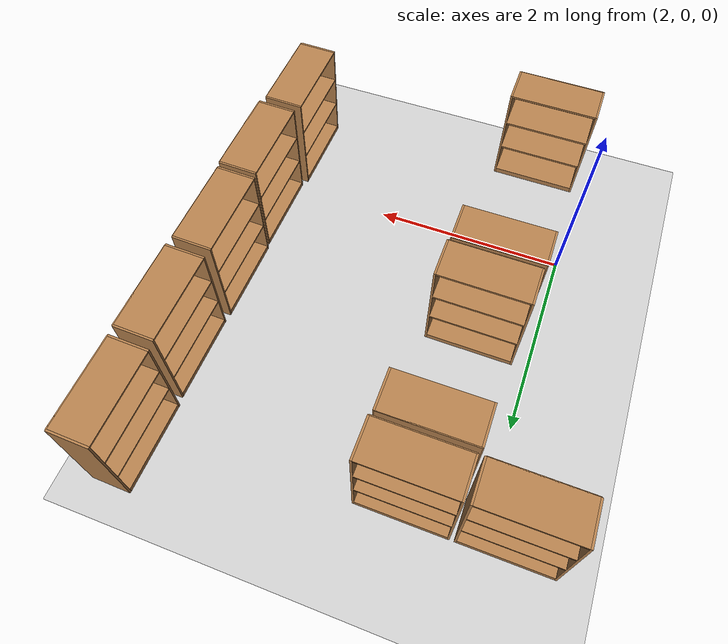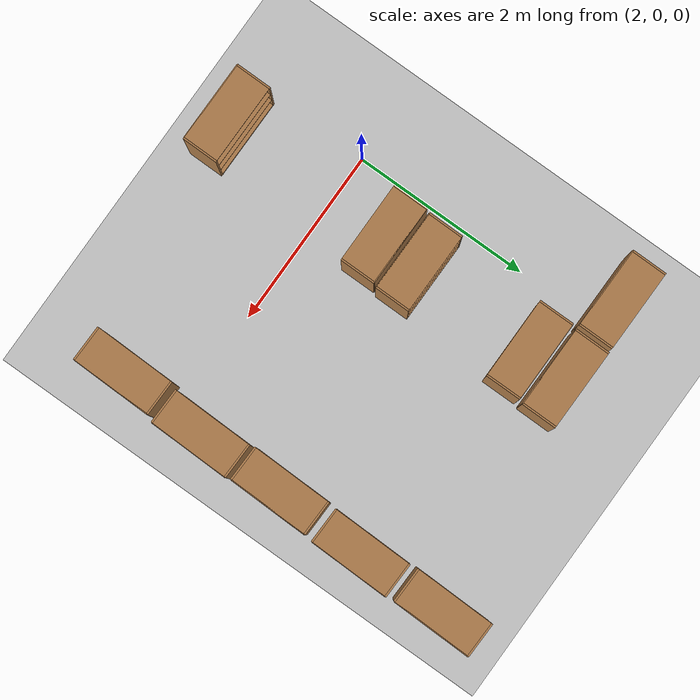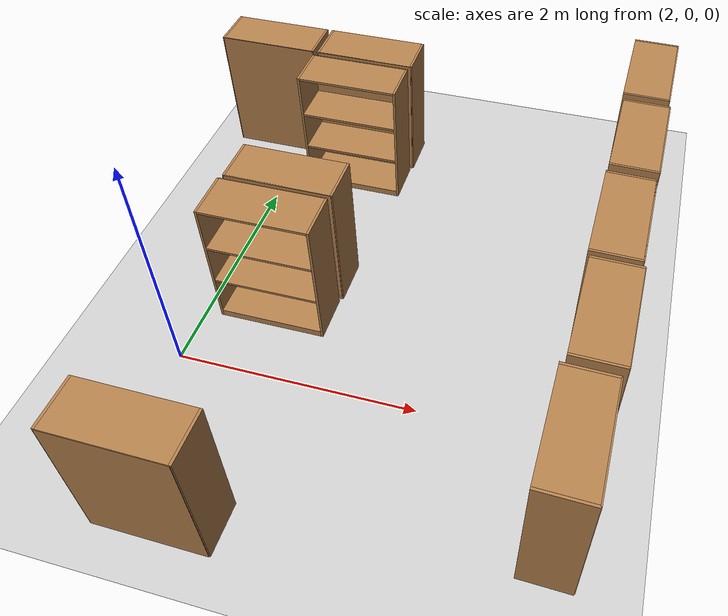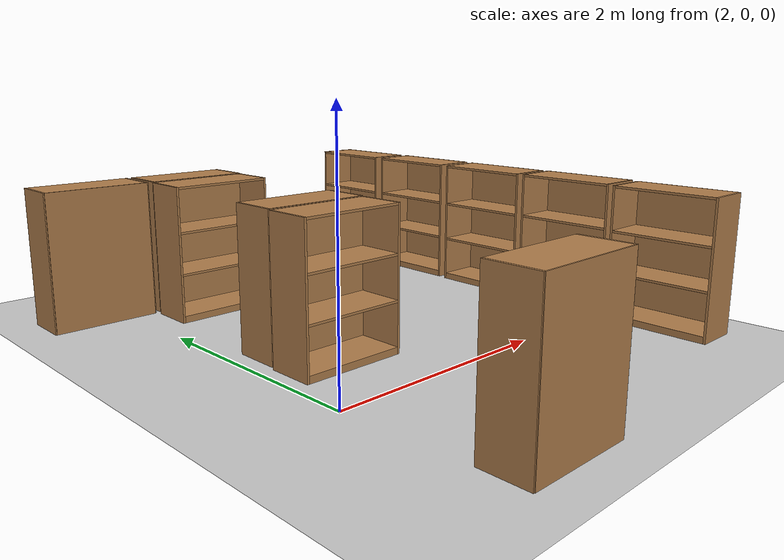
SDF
<sdf version="1.7">
 <world name="default">
  <model name="ground_plane">
   <static>1</static>
   <link name="link">
    <collision name="collision">
     <geometry><plane><normal>0 0 1</normal><size>100 100</size></plane></geometry>
     <surface>
      <contact><collide_bitmask>65535</collide_bitmask></contact>
      <friction><ode><mu>100</mu><mu2>50</mu2></ode></friction>
     </surface>
    </collision>
    <visual name="visual">
     <cast_shadows>0</cast_shadows>
     <geometry><plane><normal>0 0 1</normal><size>100 100</size></plane></geometry>
     <material>
      <script><uri>file://media/materials/scripts/gazebo.material</uri><name>Gazebo/Grey</name></script>
     </material>
    </visual>
   </link>
  </model>
  <model name="bookshelf">
   <static>1</static>
   <link name="link">
    <inertial><mass>1</mass></inertial>
    <collision name="back">
     <pose>0 0.005 0.6 0 -0 0</pose>
     <geometry><box><size>0.9 0.01 1.2</size></box></geometry>
    </collision>
    <visual name="visual1">
     <pose>0 0.005 0.6 0 -0 0</pose>
     <geometry><box><size>0.9 0.01 1.2</size></box></geometry>
     <material>
      <script><uri>file://media/materials/scripts/gazebo.material</uri><name>Gazebo/Wood</name></script>
     </material>
    </visual>
    <collision name="left_side">
     <pose>0.45 -0.195 0.6 0 -0 0</pose>
     <geometry><box><size>0.02 0.4 1.2</size></box></geometry>
    </collision>
    <visual name="visual2">
     <pose>0.45 -0.195 0.6 0 -0 0</pose>
     <geometry><box><size>0.02 0.4 1.2</size></box></geometry>
     <material>
      <script><uri>file://media/materials/scripts/gazebo.material</uri><name>Gazebo/Wood</name></script>
     </material>
    </visual>
    <collision name="right_side">
     <pose>-0.45 -0.195 0.6 0 -0 0</pose>
     <geometry><box><size>0.02 0.4 1.2</size></box></geometry>
    </collision>
    <visual name="visual3">
     <pose>-0.45 -0.195 0.6 0 -0 0</pose>
     <geometry><box><size>0.02 0.4 1.2</size></box></geometry>
     <material>
      <script><uri>file://media/materials/scripts/gazebo.material</uri><name>Gazebo/Wood</name></script>
     </material>
    </visual>
    <collision name="bottom">
     <pose>0 -0.195 0.03 0 -0 0</pose>
     <geometry><box><size>0.88 0.4 0.06</size></box></geometry>
    </collision>
    <visual name="visual4">
     <pose>0 -0.195 0.03 0 -0 0</pose>
     <geometry><box><size>0.88 0.4 0.06</size></box></geometry>
     <material>
      <script><uri>file://media/materials/scripts/gazebo.material</uri><name>Gazebo/Wood</name></script>
     </material>
    </visual>
    <collision name="top">
     <pose>0 -0.195 1.19 0 -0 0</pose>
     <geometry><box><size>0.88 0.4 0.02</size></box></geometry>
    </collision>
    <visual name="visual5">
     <pose>0 -0.195 1.19 0 -0 0</pose>
     <geometry><box><size>0.88 0.4 0.02</size></box></geometry>
     <material>
      <script><uri>file://media/materials/scripts/gazebo.material</uri><name>Gazebo/Wood</name></script>
     </material>
    </visual>
    <collision name="low_shelf">
     <pose>0 -0.195 0.43 0 -0 0</pose>
     <geometry><box><size>0.88 0.4 0.02</size></box></geometry>
    </collision>
    <visual name="visual6">
     <pose>0 -0.195 0.43 0 -0 0</pose>
     <geometry><box><size>0.88 0.4 0.02</size></box></geometry>
     <material>
      <script><uri>file://media/materials/scripts/gazebo.material</uri><name>Gazebo/Wood</name></script>
     </material>
    </visual>
    <collision name="high_shelf">
     <pose>0 -0.195 0.8 0 -0 0</pose>
     <geometry><box><size>0.88 0.4 0.02</size></box></geometry>
    </collision>
    <visual name="visual7">
     <pose>0 -0.195 0.8 0 -0 0</pose>
     <geometry><box><size>0.88 0.4 0.02</size></box></geometry>
     <material>
      <script><uri>file://media/materials/scripts/gazebo.material</uri><name>Gazebo/Wood</name></script>
     </material>
    </visual>
   </link>
   <pose>2.68648 2.72445 0 0 -0 0</pose>
  </model>
  <model name="bookshelf_2">
   <static>1</static>
   <link name="link">
    <inertial><mass>1</mass></inertial>
    <collision name="back">
     <pose>0 0.005 0.6 0 -0 0</pose>
     <geometry><box><size>0.9 0.01 1.2</size></box></geometry>
    </collision>
    <visual name="visual1">
     <pose>0 0.005 0.6 0 -0 0</pose>
     <geometry><box><size>0.9 0.01 1.2</size></box></geometry>
     <material>
      <script><uri>file://media/materials/scripts/gazebo.material</uri><name>Gazebo/Wood</name></script>
     </material>
    </visual>
    <collision name="left_side">
     <pose>0.45 -0.195 0.6 0 -0 0</pose>
     <geometry><box><size>0.02 0.4 1.2</size></box></geometry>
    </collision>
    <visual name="visual2">
     <pose>0.45 -0.195 0.6 0 -0 0</pose>
     <geometry><box><size>0.02 0.4 1.2</size></box></geometry>
     <material>
      <script><uri>file://media/materials/scripts/gazebo.material</uri><name>Gazebo/Wood</name></script>
     </material>
    </visual>
    <collision name="right_side">
     <pose>-0.45 -0.195 0.6 0 -0 0</pose>
     <geometry><box><size>0.02 0.4 1.2</size></box></geometry>
    </collision>
    <visual name="visual3">
     <pose>-0.45 -0.195 0.6 0 -0 0</pose>
     <geometry><box><size>0.02 0.4 1.2</size></box></geometry>
     <material>
      <script><uri>file://media/materials/scripts/gazebo.material</uri><name>Gazebo/Wood</name></script>
     </material>
    </visual>
    <collision name="bottom">
     <pose>0 -0.195 0.03 0 -0 0</pose>
     <geometry><box><size>0.88 0.4 0.06</size></box></geometry>
    </collision>
    <visual name="visual4">
     <pose>0 -0.195 0.03 0 -0 0</pose>
     <geometry><box><size>0.88 0.4 0.06</size></box></geometry>
     <material>
      <script><uri>file://media/materials/scripts/gazebo.material</uri><name>Gazebo/Wood</name></script>
     </material>
    </visual>
    <collision name="top">
     <pose>0 -0.195 1.19 0 -0 0</pose>
     <geometry><box><size>0.88 0.4 0.02</size></box></geometry>
    </collision>
    <visual name="visual5">
     <pose>0 -0.195 1.19 0 -0 0</pose>
     <geometry><box><size>0.88 0.4 0.02</size></box></geometry>
     <material>
      <script><uri>file://media/materials/scripts/gazebo.material</uri><name>Gazebo/Wood</name></script>
     </material>
    </visual>
    <collision name="low_shelf">
     <pose>0 -0.195 0.43 0 -0 0</pose>
     <geometry><box><size>0.88 0.4 0.02</size></box></geometry>
    </collision>
    <visual name="visual6">
     <pose>0 -0.195 0.43 0 -0 0</pose>
     <geometry><box><size>0.88 0.4 0.02</size></box></geometry>
     <material>
      <script><uri>file://media/materials/scripts/gazebo.material</uri><name>Gazebo/Wood</name></script>
     </material>
    </visual>
    <collision name="high_shelf">
     <pose>0 -0.195 0.8 0 -0 0</pose>
     <geometry><box><size>0.88 0.4 0.02</size></box></geometry>
    </collision>
    <visual name="visual7">
     <pose>0 -0.195 0.8 0 -0 0</pose>
     <geometry><box><size>0.88 0.4 0.02</size></box></geometry>
     <material>
      <script><uri>file://media/materials/scripts/gazebo.material</uri><name>Gazebo/Wood</name></script>
     </material>
    </visual>
   </link>
   <pose>2.61434 0.940511 0 0 -0 3.13622</pose>
  </model>
  <model name="bookshelf_clone">
   <static>1</static>
   <link name="link">
    <inertial><mass>1</mass></inertial>
    <collision name="back">
     <pose>0 0.005 0.6 0 -0 0</pose>
     <geometry><box><size>0.9 0.01 1.2</size></box></geometry>
    </collision>
    <visual name="visual1">
     <pose>0 0.005 0.6 0 -0 0</pose>
     <geometry><box><size>0.9 0.01 1.2</size></box></geometry>
     <material>
      <script><uri>file://media/materials/scripts/gazebo.material</uri><name>Gazebo/Wood</name></script>
     </material>
    </visual>
    <collision name="left_side">
     <pose>0.45 -0.195 0.6 0 -0 0</pose>
     <geometry><box><size>0.02 0.4 1.2</size></box></geometry>
    </collision>
    <visual name="visual2">
     <pose>0.45 -0.195 0.6 0 -0 0</pose>
     <geometry><box><size>0.02 0.4 1.2</size></box></geometry>
     <material>
      <script><uri>file://media/materials/scripts/gazebo.material</uri><name>Gazebo/Wood</name></script>
     </material>
    </visual>
    <collision name="right_side">
     <pose>-0.45 -0.195 0.6 0 -0 0</pose>
     <geometry><box><size>0.02 0.4 1.2</size></box></geometry>
    </collision>
    <visual name="visual3">
     <pose>-0.45 -0.195 0.6 0 -0 0</pose>
     <geometry><box><size>0.02 0.4 1.2</size></box></geometry>
     <material>
      <script><uri>file://media/materials/scripts/gazebo.material</uri><name>Gazebo/Wood</name></script>
     </material>
    </visual>
    <collision name="bottom">
     <pose>0 -0.195 0.03 0 -0 0</pose>
     <geometry><box><size>0.88 0.4 0.06</size></box></geometry>
    </collision>
    <visual name="visual4">
     <pose>0 -0.195 0.03 0 -0 0</pose>
     <geometry><box><size>0.88 0.4 0.06</size></box></geometry>
     <material>
      <script><uri>file://media/materials/scripts/gazebo.material</uri><name>Gazebo/Wood</name></script>
     </material>
    </visual>
    <collision name="top">
     <pose>0 -0.195 1.19 0 -0 0</pose>
     <geometry><box><size>0.88 0.4 0.02</size></box></geometry>
    </collision>
    <visual name="visual5">
     <pose>0 -0.195 1.19 0 -0 0</pose>
     <geometry><box><size>0.88 0.4 0.02</size></box></geometry>
     <material>
      <script><uri>file://media/materials/scripts/gazebo.material</uri><name>Gazebo/Wood</name></script>
     </material>
    </visual>
    <collision name="low_shelf">
     <pose>0 -0.195 0.43 0 -0 0</pose>
     <geometry><box><size>0.88 0.4 0.02</size></box></geometry>
    </collision>
    <visual name="visual6">
     <pose>0 -0.195 0.43 0 -0 0</pose>
     <geometry><box><size>0.88 0.4 0.02</size></box></geometry>
     <material>
      <script><uri>file://media/materials/scripts/gazebo.material</uri><name>Gazebo/Wood</name></script>
     </material>
    </visual>
    <collision name="high_shelf">
     <pose>0 -0.195 0.8 0 -0 0</pose>
     <geometry><box><size>0.88 0.4 0.02</size></box></geometry>
    </collision>
    <visual name="visual7">
     <pose>0 -0.195 0.8 0 -0 0</pose>
     <geometry><box><size>0.88 0.4 0.02</size></box></geometry>
     <material>
      <script><uri>file://media/materials/scripts/gazebo.material</uri><name>Gazebo/Wood</name></script>
     </material>
    </visual>
   </link>
   <pose>2.59058 0.88967 0 0 -0 0</pose>
  </model>
  <model name="bookshelf_2_clone_0_clone">
   <static>1</static>
   <link name="link">
    <inertial><mass>1</mass></inertial>
    <collision name="back">
     <pose>0 0.005 0.6 0 -0 0</pose>
     <geometry><box><size>0.9 0.01 1.2</size></box></geometry>
    </collision>
    <visual name="visual1">
     <pose>0 0.005 0.6 0 -0 0</pose>
     <geometry><box><size>0.9 0.01 1.2</size></box></geometry>
     <material>
      <script><uri>file://media/materials/scripts/gazebo.material</uri><name>Gazebo/Wood</name></script>
     </material>
    </visual>
    <collision name="left_side">
     <pose>0.45 -0.195 0.6 0 -0 0</pose>
     <geometry><box><size>0.02 0.4 1.2</size></box></geometry>
    </collision>
    <visual name="visual2">
     <pose>0.45 -0.195 0.6 0 -0 0</pose>
     <geometry><box><size>0.02 0.4 1.2</size></box></geometry>
     <material>
      <script><uri>file://media/materials/scripts/gazebo.material</uri><name>Gazebo/Wood</name></script>
     </material>
    </visual>
    <collision name="right_side">
     <pose>-0.45 -0.195 0.6 0 -0 0</pose>
     <geometry><box><size>0.02 0.4 1.2</size></box></geometry>
    </collision>
    <visual name="visual3">
     <pose>-0.45 -0.195 0.6 0 -0 0</pose>
     <geometry><box><size>0.02 0.4 1.2</size></box></geometry>
     <material>
      <script><uri>file://media/materials/scripts/gazebo.material</uri><name>Gazebo/Wood</name></script>
     </material>
    </visual>
    <collision name="bottom">
     <pose>0 -0.195 0.03 0 -0 0</pose>
     <geometry><box><size>0.88 0.4 0.06</size></box></geometry>
    </collision>
    <visual name="visual4">
     <pose>0 -0.195 0.03 0 -0 0</pose>
     <geometry><box><size>0.88 0.4 0.06</size></box></geometry>
     <material>
      <script><uri>file://media/materials/scripts/gazebo.material</uri><name>Gazebo/Wood</name></script>
     </material>
    </visual>
    <collision name="top">
     <pose>0 -0.195 1.19 0 -0 0</pose>
     <geometry><box><size>0.88 0.4 0.02</size></box></geometry>
    </collision>
    <visual name="visual5">
     <pose>0 -0.195 1.19 0 -0 0</pose>
     <geometry><box><size>0.88 0.4 0.02</size></box></geometry>
     <material>
      <script><uri>file://media/materials/scripts/gazebo.material</uri><name>Gazebo/Wood</name></script>
     </material>
    </visual>
    <collision name="low_shelf">
     <pose>0 -0.195 0.43 0 -0 0</pose>
     <geometry><box><size>0.88 0.4 0.02</size></box></geometry>
    </collision>
    <visual name="visual6">
     <pose>0 -0.195 0.43 0 -0 0</pose>
     <geometry><box><size>0.88 0.4 0.02</size></box></geometry>
     <material>
      <script><uri>file://media/materials/scripts/gazebo.material</uri><name>Gazebo/Wood</name></script>
     </material>
    </visual>
    <collision name="high_shelf">
     <pose>0 -0.195 0.8 0 -0 0</pose>
     <geometry><box><size>0.88 0.4 0.02</size></box></geometry>
    </collision>
    <visual name="visual7">
     <pose>0 -0.195 0.8 0 -0 0</pose>
     <geometry><box><size>0.88 0.4 0.02</size></box></geometry>
     <material>
      <script><uri>file://media/materials/scripts/gazebo.material</uri><name>Gazebo/Wood</name></script>
     </material>
    </visual>
   </link>
   <pose>2.71065 2.78539 0 0 -0 3.13622</pose>
  </model>
  <model name="bookshelf_2_clone_0_clone_0">
   <static>1</static>
   <link name="link">
    <inertial><mass>1</mass></inertial>
    <collision name="back">
     <pose>0 0.005 0.6 0 -0 0</pose>
     <geometry><box><size>0.9 0.01 1.2</size></box></geometry>
    </collision>
    <visual name="visual1">
     <pose>0 0.005 0.6 0 -0 0</pose>
     <geometry><box><size>0.9 0.01 1.2</size></box></geometry>
     <material>
      <script><uri>file://media/materials/scripts/gazebo.material</uri><name>Gazebo/Wood</name></script>
     </material>
    </visual>
    <collision name="left_side">
     <pose>0.45 -0.195 0.6 0 -0 0</pose>
     <geometry><box><size>0.02 0.4 1.2</size></box></geometry>
    </collision>
    <visual name="visual2">
     <pose>0.45 -0.195 0.6 0 -0 0</pose>
     <geometry><box><size>0.02 0.4 1.2</size></box></geometry>
     <material>
      <script><uri>file://media/materials/scripts/gazebo.material</uri><name>Gazebo/Wood</name></script>
     </material>
    </visual>
    <collision name="right_side">
     <pose>-0.45 -0.195 0.6 0 -0 0</pose>
     <geometry><box><size>0.02 0.4 1.2</size></box></geometry>
    </collision>
    <visual name="visual3">
     <pose>-0.45 -0.195 0.6 0 -0 0</pose>
     <geometry><box><size>0.02 0.4 1.2</size></box></geometry>
     <material>
      <script><uri>file://media/materials/scripts/gazebo.material</uri><name>Gazebo/Wood</name></script>
     </material>
    </visual>
    <collision name="bottom">
     <pose>0 -0.195 0.03 0 -0 0</pose>
     <geometry><box><size>0.88 0.4 0.06</size></box></geometry>
    </collision>
    <visual name="visual4">
     <pose>0 -0.195 0.03 0 -0 0</pose>
     <geometry><box><size>0.88 0.4 0.06</size></box></geometry>
     <material>
      <script><uri>file://media/materials/scripts/gazebo.material</uri><name>Gazebo/Wood</name></script>
     </material>
    </visual>
    <collision name="top">
     <pose>0 -0.195 1.19 0 -0 0</pose>
     <geometry><box><size>0.88 0.4 0.02</size></box></geometry>
    </collision>
    <visual name="visual5">
     <pose>0 -0.195 1.19 0 -0 0</pose>
     <geometry><box><size>0.88 0.4 0.02</size></box></geometry>
     <material>
      <script><uri>file://media/materials/scripts/gazebo.material</uri><name>Gazebo/Wood</name></script>
     </material>
    </visual>
    <collision name="low_shelf">
     <pose>0 -0.195 0.43 0 -0 0</pose>
     <geometry><box><size>0.88 0.4 0.02</size></box></geometry>
    </collision>
    <visual name="visual6">
     <pose>0 -0.195 0.43 0 -0 0</pose>
     <geometry><box><size>0.88 0.4 0.02</size></box></geometry>
     <material>
      <script><uri>file://media/materials/scripts/gazebo.material</uri><name>Gazebo/Wood</name></script>
     </material>
    </visual>
    <collision name="high_shelf">
     <pose>0 -0.195 0.8 0 -0 0</pose>
     <geometry><box><size>0.88 0.4 0.02</size></box></geometry>
    </collision>
    <visual name="visual7">
     <pose>0 -0.195 0.8 0 -0 0</pose>
     <geometry><box><size>0.88 0.4 0.02</size></box></geometry>
     <material>
      <script><uri>file://media/materials/scripts/gazebo.material</uri><name>Gazebo/Wood</name></script>
     </material>
    </visual>
   </link>
   <pose>1.74885 2.78963 0 0 -0 3.13622</pose>
  </model>
  <model name="bookshelf_2_clone_1">
   <static>1</static>
   <link name="link">
    <inertial><mass>1</mass></inertial>
    <collision name="back">
     <pose>0 0.005 0.6 0 -0 0</pose>
     <geometry><box><size>0.9 0.01 1.2</size></box></geometry>
    </collision>
    <visual name="visual1">
     <pose>0 0.005 0.6 0 -0 0</pose>
     <geometry><box><size>0.9 0.01 1.2</size></box></geometry>
     <material>
      <script><uri>file://media/materials/scripts/gazebo.material</uri><name>Gazebo/Wood</name></script>
     </material>
    </visual>
    <collision name="left_side">
     <pose>0.45 -0.195 0.6 0 -0 0</pose>
     <geometry><box><size>0.02 0.4 1.2</size></box></geometry>
    </collision>
    <visual name="visual2">
     <pose>0.45 -0.195 0.6 0 -0 0</pose>
     <geometry><box><size>0.02 0.4 1.2</size></box></geometry>
     <material>
      <script><uri>file://media/materials/scripts/gazebo.material</uri><name>Gazebo/Wood</name></script>
     </material>
    </visual>
    <collision name="right_side">
     <pose>-0.45 -0.195 0.6 0 -0 0</pose>
     <geometry><box><size>0.02 0.4 1.2</size></box></geometry>
    </collision>
    <visual name="visual3">
     <pose>-0.45 -0.195 0.6 0 -0 0</pose>
     <geometry><box><size>0.02 0.4 1.2</size></box></geometry>
     <material>
      <script><uri>file://media/materials/scripts/gazebo.material</uri><name>Gazebo/Wood</name></script>
     </material>
    </visual>
    <collision name="bottom">
     <pose>0 -0.195 0.03 0 -0 0</pose>
     <geometry><box><size>0.88 0.4 0.06</size></box></geometry>
    </collision>
    <visual name="visual4">
     <pose>0 -0.195 0.03 0 -0 0</pose>
     <geometry><box><size>0.88 0.4 0.06</size></box></geometry>
     <material>
      <script><uri>file://media/materials/scripts/gazebo.material</uri><name>Gazebo/Wood</name></script>
     </material>
    </visual>
    <collision name="top">
     <pose>0 -0.195 1.19 0 -0 0</pose>
     <geometry><box><size>0.88 0.4 0.02</size></box></geometry>
    </collision>
    <visual name="visual5">
     <pose>0 -0.195 1.19 0 -0 0</pose>
     <geometry><box><size>0.88 0.4 0.02</size></box></geometry>
     <material>
      <script><uri>file://media/materials/scripts/gazebo.material</uri><name>Gazebo/Wood</name></script>
     </material>
    </visual>
    <collision name="low_shelf">
     <pose>0 -0.195 0.43 0 -0 0</pose>
     <geometry><box><size>0.88 0.4 0.02</size></box></geometry>
    </collision>
    <visual name="visual6">
     <pose>0 -0.195 0.43 0 -0 0</pose>
     <geometry><box><size>0.88 0.4 0.02</size></box></geometry>
     <material>
      <script><uri>file://media/materials/scripts/gazebo.material</uri><name>Gazebo/Wood</name></script>
     </material>
    </visual>
    <collision name="high_shelf">
     <pose>0 -0.195 0.8 0 -0 0</pose>
     <geometry><box><size>0.88 0.4 0.02</size></box></geometry>
    </collision>
    <visual name="visual7">
     <pose>0 -0.195 0.8 0 -0 0</pose>
     <geometry><box><size>0.88 0.4 0.02</size></box></geometry>
     <material>
      <script><uri>file://media/materials/scripts/gazebo.material</uri><name>Gazebo/Wood</name></script>
     </material>
    </visual>
   </link>
   <pose>2.51878 -1.46416 0 0 -0 3.13622</pose>
  </model>
  <model name="bookshelf_3">
   <static>1</static>
   <link name="link">
    <inertial><mass>1</mass></inertial>
    <collision name="back">
     <pose>0 0.005 0.6 0 -0 0</pose>
     <geometry><box><size>0.9 0.01 1.2</size></box></geometry>
    </collision>
    <visual name="visual1">
     <pose>0 0.005 0.6 0 -0 0</pose>
     <geometry><box><size>0.9 0.01 1.2</size></box></geometry>
     <material>
      <script><uri>file://media/materials/scripts/gazebo.material</uri><name>Gazebo/Wood</name></script>
     </material>
    </visual>
    <collision name="left_side">
     <pose>0.45 -0.195 0.6 0 -0 0</pose>
     <geometry><box><size>0.02 0.4 1.2</size></box></geometry>
    </collision>
    <visual name="visual2">
     <pose>0.45 -0.195 0.6 0 -0 0</pose>
     <geometry><box><size>0.02 0.4 1.2</size></box></geometry>
     <material>
      <script><uri>file://media/materials/scripts/gazebo.material</uri><name>Gazebo/Wood</name></script>
     </material>
    </visual>
    <collision name="right_side">
     <pose>-0.45 -0.195 0.6 0 -0 0</pose>
     <geometry><box><size>0.02 0.4 1.2</size></box></geometry>
    </collision>
    <visual name="visual3">
     <pose>-0.45 -0.195 0.6 0 -0 0</pose>
     <geometry><box><size>0.02 0.4 1.2</size></box></geometry>
     <material>
      <script><uri>file://media/materials/scripts/gazebo.material</uri><name>Gazebo/Wood</name></script>
     </material>
    </visual>
    <collision name="bottom">
     <pose>0 -0.195 0.03 0 -0 0</pose>
     <geometry><box><size>0.88 0.4 0.06</size></box></geometry>
    </collision>
    <visual name="visual4">
     <pose>0 -0.195 0.03 0 -0 0</pose>
     <geometry><box><size>0.88 0.4 0.06</size></box></geometry>
     <material>
      <script><uri>file://media/materials/scripts/gazebo.material</uri><name>Gazebo/Wood</name></script>
     </material>
    </visual>
    <collision name="top">
     <pose>0 -0.195 1.19 0 -0 0</pose>
     <geometry><box><size>0.88 0.4 0.02</size></box></geometry>
    </collision>
    <visual name="visual5">
     <pose>0 -0.195 1.19 0 -0 0</pose>
     <geometry><box><size>0.88 0.4 0.02</size></box></geometry>
     <material>
      <script><uri>file://media/materials/scripts/gazebo.material</uri><name>Gazebo/Wood</name></script>
     </material>
    </visual>
    <collision name="low_shelf">
     <pose>0 -0.195 0.43 0 -0 0</pose>
     <geometry><box><size>0.88 0.4 0.02</size></box></geometry>
    </collision>
    <visual name="visual6">
     <pose>0 -0.195 0.43 0 -0 0</pose>
     <geometry><box><size>0.88 0.4 0.02</size></box></geometry>
     <material>
      <script><uri>file://media/materials/scripts/gazebo.material</uri><name>Gazebo/Wood</name></script>
     </material>
    </visual>
    <collision name="high_shelf">
     <pose>0 -0.195 0.8 0 -0 0</pose>
     <geometry><box><size>0.88 0.4 0.02</size></box></geometry>
    </collision>
    <visual name="visual7">
     <pose>0 -0.195 0.8 0 -0 0</pose>
     <geometry><box><size>0.88 0.4 0.02</size></box></geometry>
     <material>
      <script><uri>file://media/materials/scripts/gazebo.material</uri><name>Gazebo/Wood</name></script>
     </material>
    </visual>
   </link>
   <pose>5.48196 3.32826 0 0 0 -1.59113</pose>
  </model>
  <model name="bookshelf_3_clone">
   <static>1</static>
   <link name="link">
    <inertial><mass>1</mass></inertial>
    <collision name="back">
     <pose>0 0.005 0.6 0 -0 0</pose>
     <geometry><box><size>0.9 0.01 1.2</size></box></geometry>
    </collision>
    <visual name="visual1">
     <pose>0 0.005 0.6 0 -0 0</pose>
     <geometry><box><size>0.9 0.01 1.2</size></box></geometry>
     <material>
      <script><uri>file://media/materials/scripts/gazebo.material</uri><name>Gazebo/Wood</name></script>
     </material>
    </visual>
    <collision name="left_side">
     <pose>0.45 -0.195 0.6 0 -0 0</pose>
     <geometry><box><size>0.02 0.4 1.2</size></box></geometry>
    </collision>
    <visual name="visual2">
     <pose>0.45 -0.195 0.6 0 -0 0</pose>
     <geometry><box><size>0.02 0.4 1.2</size></box></geometry>
     <material>
      <script><uri>file://media/materials/scripts/gazebo.material</uri><name>Gazebo/Wood</name></script>
     </material>
    </visual>
    <collision name="right_side">
     <pose>-0.45 -0.195 0.6 0 -0 0</pose>
     <geometry><box><size>0.02 0.4 1.2</size></box></geometry>
    </collision>
    <visual name="visual3">
     <pose>-0.45 -0.195 0.6 0 -0 0</pose>
     <geometry><box><size>0.02 0.4 1.2</size></box></geometry>
     <material>
      <script><uri>file://media/materials/scripts/gazebo.material</uri><name>Gazebo/Wood</name></script>
     </material>
    </visual>
    <collision name="bottom">
     <pose>0 -0.195 0.03 0 -0 0</pose>
     <geometry><box><size>0.88 0.4 0.06</size></box></geometry>
    </collision>
    <visual name="visual4">
     <pose>0 -0.195 0.03 0 -0 0</pose>
     <geometry><box><size>0.88 0.4 0.06</size></box></geometry>
     <material>
      <script><uri>file://media/materials/scripts/gazebo.material</uri><name>Gazebo/Wood</name></script>
     </material>
    </visual>
    <collision name="top">
     <pose>0 -0.195 1.19 0 -0 0</pose>
     <geometry><box><size>0.88 0.4 0.02</size></box></geometry>
    </collision>
    <visual name="visual5">
     <pose>0 -0.195 1.19 0 -0 0</pose>
     <geometry><box><size>0.88 0.4 0.02</size></box></geometry>
     <material>
      <script><uri>file://media/materials/scripts/gazebo.material</uri><name>Gazebo/Wood</name></script>
     </material>
    </visual>
    <collision name="low_shelf">
     <pose>0 -0.195 0.43 0 -0 0</pose>
     <geometry><box><size>0.88 0.4 0.02</size></box></geometry>
    </collision>
    <visual name="visual6">
     <pose>0 -0.195 0.43 0 -0 0</pose>
     <geometry><box><size>0.88 0.4 0.02</size></box></geometry>
     <material>
      <script><uri>file://media/materials/scripts/gazebo.material</uri><name>Gazebo/Wood</name></script>
     </material>
    </visual>
    <collision name="high_shelf">
     <pose>0 -0.195 0.8 0 -0 0</pose>
     <geometry><box><size>0.88 0.4 0.02</size></box></geometry>
    </collision>
    <visual name="visual7">
     <pose>0 -0.195 0.8 0 -0 0</pose>
     <geometry><box><size>0.88 0.4 0.02</size></box></geometry>
     <material>
      <script><uri>file://media/materials/scripts/gazebo.material</uri><name>Gazebo/Wood</name></script>
     </material>
    </visual>
   </link>
   <pose>5.47577 2.33053 0 0 0 -1.59113</pose>
  </model>
  <model name="bookshelf_3_clone_0">
   <static>1</static>
   <link name="link">
    <inertial><mass>1</mass></inertial>
    <collision name="back">
     <pose>0 0.005 0.6 0 -0 0</pose>
     <geometry><box><size>0.9 0.01 1.2</size></box></geometry>
    </collision>
    <visual name="visual1">
     <pose>0 0.005 0.6 0 -0 0</pose>
     <geometry><box><size>0.9 0.01 1.2</size></box></geometry>
     <material>
      <script><uri>file://media/materials/scripts/gazebo.material</uri><name>Gazebo/Wood</name></script>
     </material>
    </visual>
    <collision name="left_side">
     <pose>0.45 -0.195 0.6 0 -0 0</pose>
     <geometry><box><size>0.02 0.4 1.2</size></box></geometry>
    </collision>
    <visual name="visual2">
     <pose>0.45 -0.195 0.6 0 -0 0</pose>
     <geometry><box><size>0.02 0.4 1.2</size></box></geometry>
     <material>
      <script><uri>file://media/materials/scripts/gazebo.material</uri><name>Gazebo/Wood</name></script>
     </material>
    </visual>
    <collision name="right_side">
     <pose>-0.45 -0.195 0.6 0 -0 0</pose>
     <geometry><box><size>0.02 0.4 1.2</size></box></geometry>
    </collision>
    <visual name="visual3">
     <pose>-0.45 -0.195 0.6 0 -0 0</pose>
     <geometry><box><size>0.02 0.4 1.2</size></box></geometry>
     <material>
      <script><uri>file://media/materials/scripts/gazebo.material</uri><name>Gazebo/Wood</name></script>
     </material>
    </visual>
    <collision name="bottom">
     <pose>0 -0.195 0.03 0 -0 0</pose>
     <geometry><box><size>0.88 0.4 0.06</size></box></geometry>
    </collision>
    <visual name="visual4">
     <pose>0 -0.195 0.03 0 -0 0</pose>
     <geometry><box><size>0.88 0.4 0.06</size></box></geometry>
     <material>
      <script><uri>file://media/materials/scripts/gazebo.material</uri><name>Gazebo/Wood</name></script>
     </material>
    </visual>
    <collision name="top">
     <pose>0 -0.195 1.19 0 -0 0</pose>
     <geometry><box><size>0.88 0.4 0.02</size></box></geometry>
    </collision>
    <visual name="visual5">
     <pose>0 -0.195 1.19 0 -0 0</pose>
     <geometry><box><size>0.88 0.4 0.02</size></box></geometry>
     <material>
      <script><uri>file://media/materials/scripts/gazebo.material</uri><name>Gazebo/Wood</name></script>
     </material>
    </visual>
    <collision name="low_shelf">
     <pose>0 -0.195 0.43 0 -0 0</pose>
     <geometry><box><size>0.88 0.4 0.02</size></box></geometry>
    </collision>
    <visual name="visual6">
     <pose>0 -0.195 0.43 0 -0 0</pose>
     <geometry><box><size>0.88 0.4 0.02</size></box></geometry>
     <material>
      <script><uri>file://media/materials/scripts/gazebo.material</uri><name>Gazebo/Wood</name></script>
     </material>
    </visual>
    <collision name="high_shelf">
     <pose>0 -0.195 0.8 0 -0 0</pose>
     <geometry><box><size>0.88 0.4 0.02</size></box></geometry>
    </collision>
    <visual name="visual7">
     <pose>0 -0.195 0.8 0 -0 0</pose>
     <geometry><box><size>0.88 0.4 0.02</size></box></geometry>
     <material>
      <script><uri>file://media/materials/scripts/gazebo.material</uri><name>Gazebo/Wood</name></script>
     </material>
    </visual>
   </link>
   <pose>5.4432 1.32929 0 0 0 -1.59113</pose>
  </model>
  <model name="bookshelf_3_clone_1">
   <static>1</static>
   <link name="link">
    <inertial><mass>1</mass></inertial>
    <collision name="back">
     <pose>0 0.005 0.6 0 -0 0</pose>
     <geometry><box><size>0.9 0.01 1.2</size></box></geometry>
    </collision>
    <visual name="visual1">
     <pose>0 0.005 0.6 0 -0 0</pose>
     <geometry><box><size>0.9 0.01 1.2</size></box></geometry>
     <material>
      <script><uri>file://media/materials/scripts/gazebo.material</uri><name>Gazebo/Wood</name></script>
     </material>
    </visual>
    <collision name="left_side">
     <pose>0.45 -0.195 0.6 0 -0 0</pose>
     <geometry><box><size>0.02 0.4 1.2</size></box></geometry>
    </collision>
    <visual name="visual2">
     <pose>0.45 -0.195 0.6 0 -0 0</pose>
     <geometry><box><size>0.02 0.4 1.2</size></box></geometry>
     <material>
      <script><uri>file://media/materials/scripts/gazebo.material</uri><name>Gazebo/Wood</name></script>
     </material>
    </visual>
    <collision name="right_side">
     <pose>-0.45 -0.195 0.6 0 -0 0</pose>
     <geometry><box><size>0.02 0.4 1.2</size></box></geometry>
    </collision>
    <visual name="visual3">
     <pose>-0.45 -0.195 0.6 0 -0 0</pose>
     <geometry><box><size>0.02 0.4 1.2</size></box></geometry>
     <material>
      <script><uri>file://media/materials/scripts/gazebo.material</uri><name>Gazebo/Wood</name></script>
     </material>
    </visual>
    <collision name="bottom">
     <pose>0 -0.195 0.03 0 -0 0</pose>
     <geometry><box><size>0.88 0.4 0.06</size></box></geometry>
    </collision>
    <visual name="visual4">
     <pose>0 -0.195 0.03 0 -0 0</pose>
     <geometry><box><size>0.88 0.4 0.06</size></box></geometry>
     <material>
      <script><uri>file://media/materials/scripts/gazebo.material</uri><name>Gazebo/Wood</name></script>
     </material>
    </visual>
    <collision name="top">
     <pose>0 -0.195 1.19 0 -0 0</pose>
     <geometry><box><size>0.88 0.4 0.02</size></box></geometry>
    </collision>
    <visual name="visual5">
     <pose>0 -0.195 1.19 0 -0 0</pose>
     <geometry><box><size>0.88 0.4 0.02</size></box></geometry>
     <material>
      <script><uri>file://media/materials/scripts/gazebo.material</uri><name>Gazebo/Wood</name></script>
     </material>
    </visual>
    <collision name="low_shelf">
     <pose>0 -0.195 0.43 0 -0 0</pose>
     <geometry><box><size>0.88 0.4 0.02</size></box></geometry>
    </collision>
    <visual name="visual6">
     <pose>0 -0.195 0.43 0 -0 0</pose>
     <geometry><box><size>0.88 0.4 0.02</size></box></geometry>
     <material>
      <script><uri>file://media/materials/scripts/gazebo.material</uri><name>Gazebo/Wood</name></script>
     </material>
    </visual>
    <collision name="high_shelf">
     <pose>0 -0.195 0.8 0 -0 0</pose>
     <geometry><box><size>0.88 0.4 0.02</size></box></geometry>
    </collision>
    <visual name="visual7">
     <pose>0 -0.195 0.8 0 -0 0</pose>
     <geometry><box><size>0.88 0.4 0.02</size></box></geometry>
     <material>
      <script><uri>file://media/materials/scripts/gazebo.material</uri><name>Gazebo/Wood</name></script>
     </material>
    </visual>
   </link>
   <pose>5.4398 0.365962 0 0 0 -1.59113</pose>
  </model>
  <model name="bookshelf_3_clone_2">
   <static>1</static>
   <link name="link">
    <inertial><mass>1</mass></inertial>
    <collision name="back">
     <pose>0 0.005 0.6 0 -0 0</pose>
     <geometry><box><size>0.9 0.01 1.2</size></box></geometry>
    </collision>
    <visual name="visual1">
     <pose>0 0.005 0.6 0 -0 0</pose>
     <geometry><box><size>0.9 0.01 1.2</size></box></geometry>
     <material>
      <script><uri>file://media/materials/scripts/gazebo.material</uri><name>Gazebo/Wood</name></script>
     </material>
    </visual>
    <collision name="left_side">
     <pose>0.45 -0.195 0.6 0 -0 0</pose>
     <geometry><box><size>0.02 0.4 1.2</size></box></geometry>
    </collision>
    <visual name="visual2">
     <pose>0.45 -0.195 0.6 0 -0 0</pose>
     <geometry><box><size>0.02 0.4 1.2</size></box></geometry>
     <material>
      <script><uri>file://media/materials/scripts/gazebo.material</uri><name>Gazebo/Wood</name></script>
     </material>
    </visual>
    <collision name="right_side">
     <pose>-0.45 -0.195 0.6 0 -0 0</pose>
     <geometry><box><size>0.02 0.4 1.2</size></box></geometry>
    </collision>
    <visual name="visual3">
     <pose>-0.45 -0.195 0.6 0 -0 0</pose>
     <geometry><box><size>0.02 0.4 1.2</size></box></geometry>
     <material>
      <script><uri>file://media/materials/scripts/gazebo.material</uri><name>Gazebo/Wood</name></script>
     </material>
    </visual>
    <collision name="bottom">
     <pose>0 -0.195 0.03 0 -0 0</pose>
     <geometry><box><size>0.88 0.4 0.06</size></box></geometry>
    </collision>
    <visual name="visual4">
     <pose>0 -0.195 0.03 0 -0 0</pose>
     <geometry><box><size>0.88 0.4 0.06</size></box></geometry>
     <material>
      <script><uri>file://media/materials/scripts/gazebo.material</uri><name>Gazebo/Wood</name></script>
     </material>
    </visual>
    <collision name="top">
     <pose>0 -0.195 1.19 0 -0 0</pose>
     <geometry><box><size>0.88 0.4 0.02</size></box></geometry>
    </collision>
    <visual name="visual5">
     <pose>0 -0.195 1.19 0 -0 0</pose>
     <geometry><box><size>0.88 0.4 0.02</size></box></geometry>
     <material>
      <script><uri>file://media/materials/scripts/gazebo.material</uri><name>Gazebo/Wood</name></script>
     </material>
    </visual>
    <collision name="low_shelf">
     <pose>0 -0.195 0.43 0 -0 0</pose>
     <geometry><box><size>0.88 0.4 0.02</size></box></geometry>
    </collision>
    <visual name="visual6">
     <pose>0 -0.195 0.43 0 -0 0</pose>
     <geometry><box><size>0.88 0.4 0.02</size></box></geometry>
     <material>
      <script><uri>file://media/materials/scripts/gazebo.material</uri><name>Gazebo/Wood</name></script>
     </material>
    </visual>
    <collision name="high_shelf">
     <pose>0 -0.195 0.8 0 -0 0</pose>
     <geometry><box><size>0.88 0.4 0.02</size></box></geometry>
    </collision>
    <visual name="visual7">
     <pose>0 -0.195 0.8 0 -0 0</pose>
     <geometry><box><size>0.88 0.4 0.02</size></box></geometry>
     <material>
      <script><uri>file://media/materials/scripts/gazebo.material</uri><name>Gazebo/Wood</name></script>
     </material>
    </visual>
   </link>
   <pose>5.38212 -0.617937 0 0 0 -1.59113</pose>
  </model>
 </world>
</sdf>
